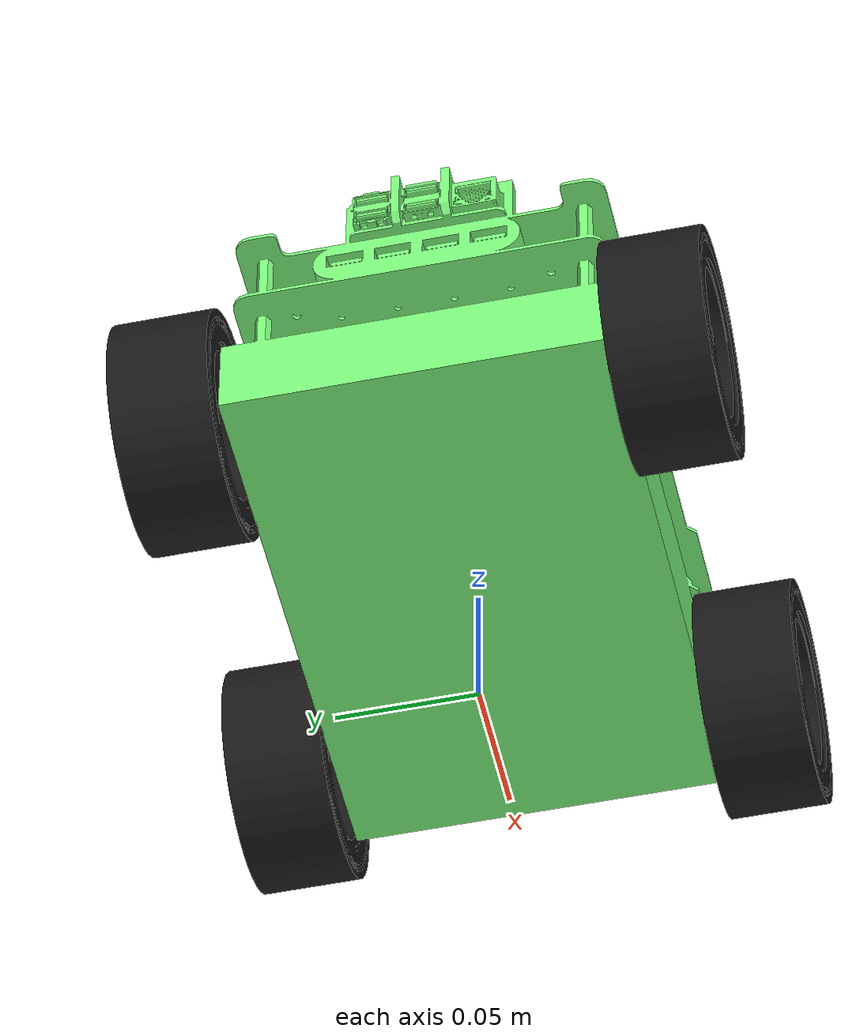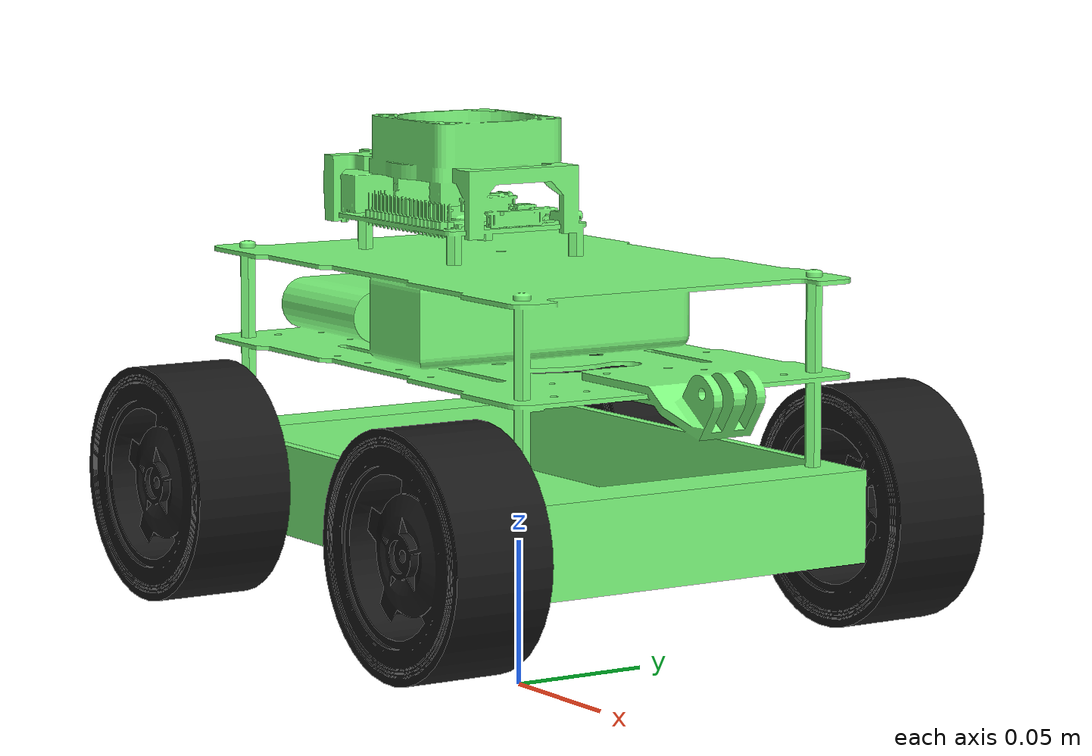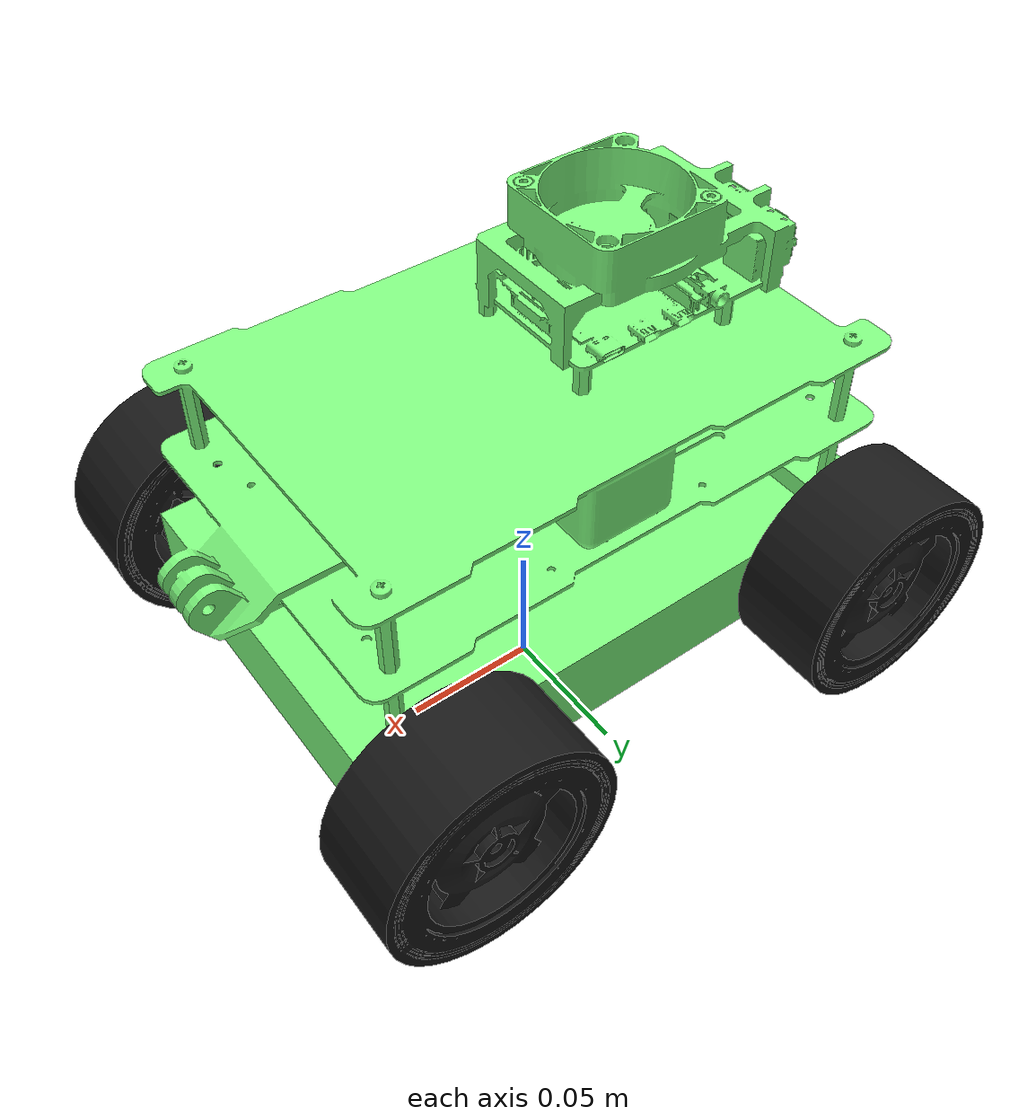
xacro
<?xml version="1.0" encoding="utf-8"?>
<robot
  name="sucata">
  <link name="base_footprint"/>
    <joint name="base_joint" type="fixed">
        <parent link="base_footprint"/>
        <child link="base_link" />
        <origin xyz="0.0014564 0.00032017 0.05608" rpy="0 0 0" />
    </joint>

  <link
    name="base_link">
    <inertial>
      <origin
        xyz="0.0014564 0.00032017 0.02708"
        rpy="0 0 0" />
      <mass
        value="0.29402" />
      <inertia
        ixx="0.00054056"
        ixy="-1.0152E-08"
        ixz="6.2563E-09"
        iyy="0.0012531"
        iyz="1.8536E-10"
        izz="0.0017493" />
    </inertial>
    <visual>
      <origin
        xyz="0 0 0"
        rpy="0 0 0" />
      <geometry>
        <mesh
          filename="package://sucata/meshes/base_link.STL" />
      </geometry>
      <material
        name="verde_claro">
        <color
          rgba="0.5 1.0 0.5 1"/>
      </material>
    </visual>
    <collision>
      <origin
        xyz="0 0 0"
        rpy="0 0 0" />
      <geometry>
        <mesh
          filename="package://sucata/meshes/base_link.STL" />
      </geometry>
    </collision>
  </link>
  <link
    name="rodaFE">
    <inertial>
      <origin
        xyz="4.33708624569817E-13 -0.0116000427495452 3.641063145432E-13"
        rpy="0 0 0" />
      <mass
        value="0.0417534418555908" />
      <inertia
        ixx="2.90386422409949E-05"
        ixy="-9.63351560872344E-17"
        ixz="-1.16755116343788E-16"
        iyy="4.53732000489224E-05"
        iyz="-1.07562778637676E-16"
        izz="2.90386422317585E-05" />
    </inertial>
    <visual>
      <origin
        xyz="0 0 0"
        rpy="0 0 0" />
      <geometry>
        <mesh
          filename="package://sucata/meshes/rodaFE.STL" />
      </geometry>
      <material
        name="preto">
        <color
          rgba="0.1 0.1 0.1 1"/>
      </material>
    </visual>
    <collision>
      <origin
        xyz="0 0 0"
        rpy="0 0 0" />
      <geometry>
        <mesh
          filename="package://sucata/meshes/rodaFE.STL" />
      </geometry>
    </collision>
  </link>
  <joint
    name="roda_FE"
    type="continuous">
    <origin
      xyz="0.0815 0.0973 0.0115"
      rpy="0 0 0" />
    <parent
      link="base_link" />
    <child
      link="rodaFE" />
    <axis
      xyz="0 1 0" />
    <limit
      effort="10"
      velocity="10" />
    <dynamics
      damping="0.1"
      friction="0.1" />
  </joint>
  <link
    name="rodaTE">
    <inertial>
      <origin
        xyz="4.33729441251529E-13 -0.0116000427495452 3.64085497861488E-13"
        rpy="0 0 0" />
      <mass
        value="0.0417534418555908" />
      <inertia
        ixx="2.90386422409949E-05"
        ixy="-9.63357589960055E-17"
        ixz="-1.1675601730821E-16"
        iyy="4.53732000489224E-05"
        iyz="-1.07560295850229E-16"
        izz="2.90386422317585E-05" />
    </inertial>
    <visual>
      <origin
        xyz="0 0 0"
        rpy="0 0 0" />
      <geometry>
        <mesh
          filename="package://sucata/meshes/rodaTE.STL" />
      </geometry>
      <material
        name="preto">
        <color
          rgba="0.1 0.1 0.1 1"/>
      </material>
    </visual>
    <collision>
      <origin
        xyz="0 0 0"
        rpy="0 0 0" />
      <geometry>
        <mesh
          filename="package://sucata/meshes/rodaTE.STL" />
      </geometry>
    </collision>
  </link>
  <joint
    name="roda_TE"
    type="continuous">
    <origin
      xyz="-0.0815 0.0973 0.0115"
      rpy="0 0 0" />
    <parent
      link="base_link" />
    <child
      link="rodaTE" />
    <axis
      xyz="0 1 0" />
    <limit
      effort="10"
      velocity="10" />
    <dynamics
      damping="0.1"
      friction="0.1" />
  </joint>
  <link
    name="rodaFD">
    <inertial>
      <origin
        xyz="-4.33708624569817E-13 0.0116000427495451 3.64003965858117E-13"
        rpy="0 0 0" />
      <mass
        value="0.0417534418555909" />
      <inertia
        ixx="2.90386422409949E-05"
        ixy="-9.63348726903862E-17"
        ixz="1.16761894791001E-16"
        iyy="4.53732000489225E-05"
        iyz="1.07446973492785E-16"
        izz="2.90386422317586E-05" />
    </inertial>
    <visual>
      <origin
        xyz="0 0 0"
        rpy="0 0 0" />
      <geometry>
        <mesh
          filename="package://sucata/meshes/rodaFD.STL" />
      </geometry>
      <material
        name="preto">
        <color
          rgba="0.1 0.1 0.1 1"/>
      </material>
    </visual>
    <collision>
      <origin
        xyz="0 0 0"
        rpy="0 0 0" />
      <geometry>
        <mesh
          filename="package://sucata/meshes/rodaFD.STL" />
      </geometry>
    </collision>
  </link>
  <joint
    name="roda_FD"
    type="continuous">
    <origin
      xyz="0.0814999999999993 -0.0973000000000006 0.0115000000000003"
      rpy="0 0 0" />
    <parent
      link="base_link" />
    <child
      link="rodaFD" />
    <axis
      xyz="0 1 0" />
    <limit
      effort="10"
      velocity="10" />
    <dynamics
      damping="0.1"
      friction="0.1" />
  </joint>
  <link
    name="rodaTD">
    <inertial>
      <origin
        xyz="-4.33729441251529E-13 0.0116000427495451 3.64019578369401E-13"
        rpy="0 0 0" />
      <mass
        value="0.0417534418555909" />
      <inertia
        ixx="2.9038642240995E-05"
        ixy="-9.63350567825533E-17"
        ixz="1.16754828991177E-16"
        iyy="4.53732000489225E-05"
        iyz="1.07446496399349E-16"
        izz="2.90386422317586E-05" />
    </inertial>
    <visual>
      <origin
        xyz="0 0 0"
        rpy="0 0 0" />
      <geometry>
        <mesh
          filename="package://sucata/meshes/rodaTD.STL" />
      </geometry>
      <material
        name="preto">
        <color
          rgba="0.1 0.1 0.1 1"/>
      </material>
    </visual>
    <collision>
      <origin
        xyz="0 0 0"
        rpy="0 0 0" />
      <geometry>
        <mesh
          filename="package://sucata/meshes/rodaTD.STL" />
      </geometry>
    </collision>
  </link>
  <joint
    name="roda_TD"
    type="continuous">
    <origin
      xyz="-0.0815 -0.0973 0.0115"
      rpy="0 0 0" />
    <parent
      link="base_link" />
    <child
      link="rodaTD" />
    <axis
      xyz="0 1 0" />
    <limit
      effort="10"
      velocity="10" />
    <dynamics
      damping="0.1"
      friction="0.1" />
  </joint>
</robot>
